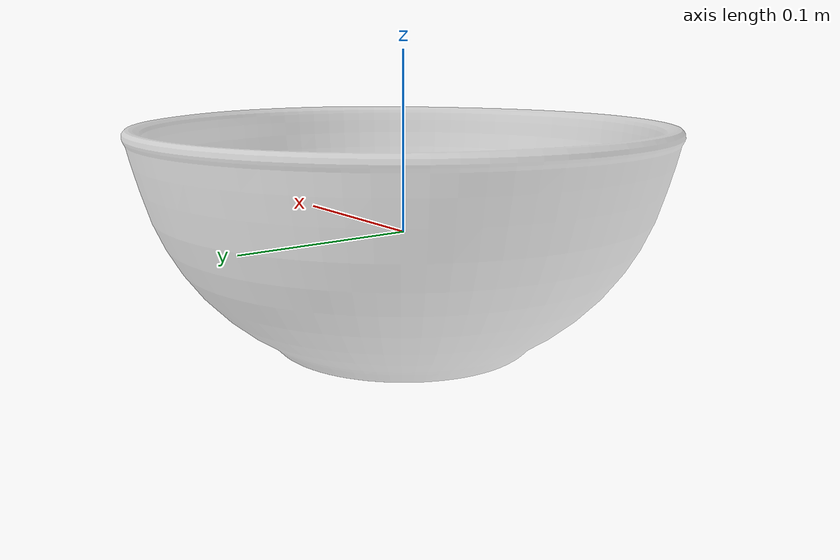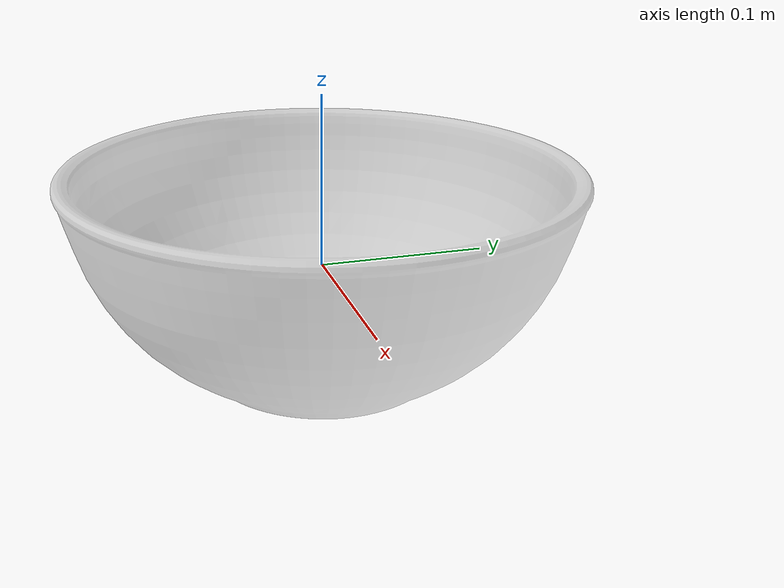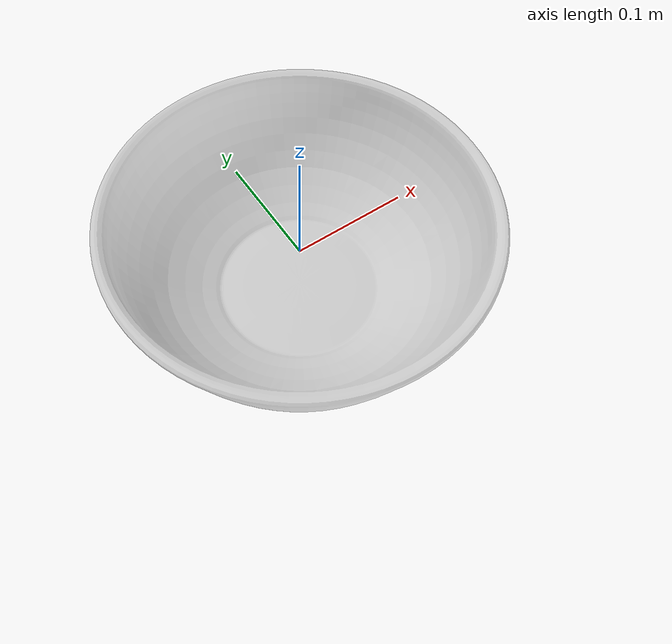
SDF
<?xml version="1.0"?>
<sdf version="1.7">
  <model name="bowl">
    <link name="bowl">
      <pose>0 0 0 0 0 0</pose>
      <inertial>
        <pose>0 0 -0.00613 0 0 0</pose>
        <mass>0.5</mass>
        <inertia>
          <ixx> 0.00389</ixx>
          <ixy> 0.00000</ixy>
          <ixz> 0.00000</ixz>
          <iyy> 0.00392</iyy>
          <iyz> 0.00000</iyz>
          <izz> 0.00637</izz>
        </inertia>
      </inertial>
      <visual name="bowl">
        <pose>0 0 0 0 0 0</pose>
        <geometry>
          <mesh>
            <uri>package://drake_models/dishes/bowls/evo_bowl_no_mtl.obj</uri>
            <scale>2.0 2.0 2.0</scale>
          </mesh>
        </geometry>
        <material>
          <diffuse>0.7 0.7 0.7 0.5</diffuse>
        </material>
      </visual>
      <collision name="collision">
        <pose>0 0 0 0 0 0</pose>
        <geometry>
          <mesh>
            <uri>package://drake_models/dishes/bowls/evo_bowl_no_mtl.obj</uri>
            <scale>2.0 2.0 2.0</scale>
          </mesh>
        </geometry>
        <drake:proximity_properties>
          <drake:rigid_hydroelastic/>
          <!-- Both mu_dynamic and mu_static are used in Continuous system.
               Only mu_dynamic is used in Discrete system. -->
          <drake:mu_dynamic>1.0</drake:mu_dynamic>
          <drake:mu_static>1.0</drake:mu_static>
        </drake:proximity_properties>
      </collision>
    </link>
  </model>
</sdf>
